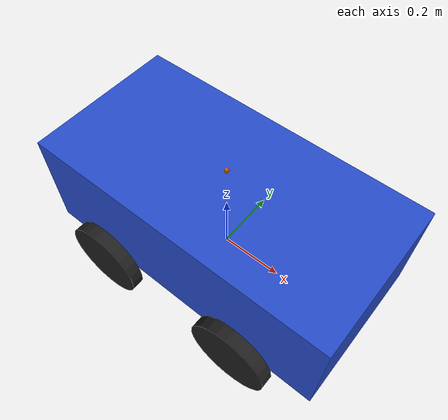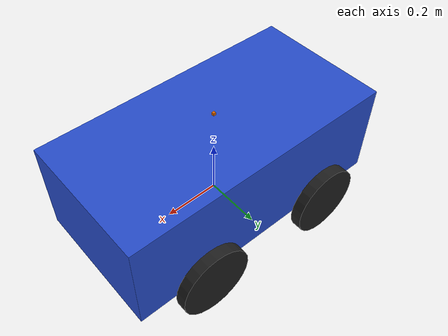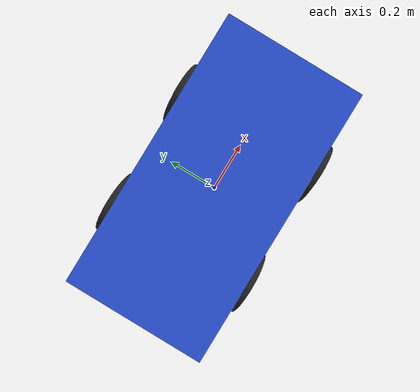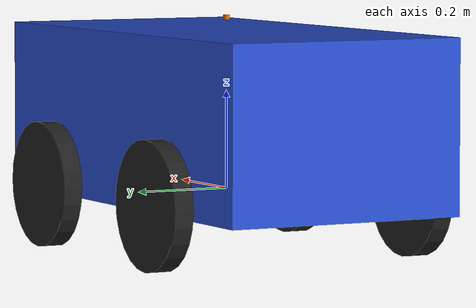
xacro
<?xml version='1.0'?>

<robot name="Rover" xmlns:xacro="http://www.ros.org/wiki/xacro">

  <xacro:include filename="$(find rover_description)/urdf/rover.gazebo" />
  <xacro:include filename="$(find rover_description)/urdf/materials.xacro"/>

  <link name='base_footprint'>
    <pose>0 0 0 0 0 0</pose>

    <inertial>
      <mass value="15.0"/>
      <origin xyz="0.0 0 0.1" rpy=" 0 0 0"/>
      <inertia
          ixx="1000"
          ixy="0"
          ixz="0"
          iyy="1000"
          iyz="0"
          izz="100"/>
    </inertial>

    <collision name='collision'>
      <origin xyz="0 0 0.15" rpy=" 0 0 0"/>
      <geometry>
        <box size= "1 0.5 0.35"/>
      </geometry>
    </collision>

    <visual name='base_footprint_visual'>
      <origin xyz="0 0 0.15" rpy=" 0 0 0"/>
      <geometry>

        <box size= "1 0.5 0.35"/>
      </geometry>
    </visual>
  </link>

  <link name="left_wheel_front">
    <collision name="collision">
      <origin xyz="0 0 0" rpy="0 1.5707 1.5707"/>
      <geometry>
        <cylinder radius="0.13" length="0.04"/>
      </geometry>
    </collision>

    <visual name="left_wheel_visual">
      <origin xyz="0 0 0" rpy="0 1.5707 1.5707"/>
      <geometry>
        <cylinder radius="0.13" length="0.04"/>
      </geometry>
    </visual>

    <inertial>
      <origin xyz="0 0 0" rpy="0 1.5707 1.5707"/>
      <mass value="5"/>
      <inertia
        ixx=".1" ixy="0.0" ixz="0.0"
        iyy=".1" iyz="0.0"
        izz=".1"/>
    </inertial>
  </link>

  <link name="right_wheel_front">
    <collision name="collision">
      <origin xyz="0 0 0" rpy="0 1.5707 1.5707"/>
      <geometry>
        <cylinder radius="0.13" length="0.04"/>
      </geometry>
    </collision>

    <visual name="right_wheel_visual">
      <origin xyz="0 0 0" rpy="0 1.5707 1.5707"/>
      <geometry>
        <cylinder radius="0.13" length="0.04"/>
      </geometry>
    </visual>

    <inertial>
      <origin xyz="0 0 0" rpy="0 1.5707 1.5707"/>
      <mass value="5"/>
      <inertia
        ixx=".1" ixy="0.0" ixz="0.0"
        iyy=".1" iyz="0.0"
        izz=".1"/>
    </inertial>
  </link>

  <link name="left_wheel_back">
    <collision name="collision">
      <origin xyz="0 0 0" rpy="0 1.5707 1.5707"/>
      <geometry>
        <cylinder radius="0.13" length="0.04"/>
      </geometry>
    </collision>

    <visual name="left_wheel_visual">
      <origin xyz="0 0 0" rpy="0 1.5707 1.5707"/>
      <geometry>
        <cylinder radius="0.13" length="0.04"/>
      </geometry>
    </visual>

    <inertial>
      <origin xyz="0 0 0" rpy="0 1.5707 1.5707"/>
      <mass value="5"/>
      <inertia
        ixx=".1" ixy="0.0" ixz="0.0"
        iyy=".1" iyz="0.0"
        izz=".1"/>
    </inertial>
  </link>

  <link name="right_wheel_back">
    <collision name="collision">
      <origin xyz="0 0 0" rpy="0 1.5707 1.5707"/>
      <geometry>
        <cylinder radius="0.13" length="0.04"/>
      </geometry>
    </collision>

    <visual name="right_wheel_visual">
      <origin xyz="0 0 0" rpy="0 1.5707 1.5707"/>
      <geometry>
        <cylinder radius="0.13" length="0.04"/>
      </geometry>
    </visual>

    <inertial>
      <origin xyz="0 0 0" rpy="0 1.5707 1.5707"/>
      <mass value="5"/>
      <inertia
        ixx=".1" ixy="0.0" ixz="0.0"
        iyy=".1" iyz="0.0"
        izz=".1"/>
    </inertial>
  </link>

  <joint type="continuous" name="left_wheel_front_hinge">
    <origin xyz="0.25 0.29 0" rpy="0 0 0"/>
    <child link="left_wheel_front"/>
    <parent link="base_footprint"/>
    <axis xyz="0 1 0" rpy="0 0 0"/>
    <limit effort="10000" velocity="1000"/>
    <joint_properties damping="1.0" friction="1.0"/>
  </joint>

  <joint type="continuous" name="right_wheel_front_hinge">
    <origin xyz="0.25 -0.29 0" rpy="0 0 0"/>
    <child link="right_wheel_front"/>
    <parent link="base_footprint"/>
    <axis xyz="0 1 0" rpy="0 0 0"/>
    <limit effort="10000" velocity="1000"/>
    <joint_properties damping="1.0" friction="1.0"/>
  </joint>

  <joint type="continuous" name="left_wheel_back_hinge">
    <origin xyz="-0.25 0.29 0" rpy="0 0 0"/>
    <child link="left_wheel_back"/>
    <parent link="base_footprint"/>
    <axis xyz="0 1 0" rpy="0 0 0"/>
    <limit effort="10000" velocity="1000"/>
    <joint_properties damping="1.0" friction="1.0"/>
  </joint>

  <joint type="continuous" name="right_wheel_back_hinge">
    <origin xyz="-0.25 -0.29 0" rpy="0 0 0"/>
    <child link="right_wheel_back"/>
    <parent link="base_footprint"/>
    <axis xyz="0 1 0" rpy="0 0 0"/>
    <limit effort="10000" velocity="1000"/>
    <joint_properties damping="1.0" friction="1.0"/>
  </joint>

  <joint name="sonar_front_joint" type="continuous">
      <axis xyz="0 0 1" />
      <origin rpy="0 0 0" xyz="0 0 0.35" />
      <parent link="base_footprint"/>
      <child link="base_sonar_front"/>
  </joint>

  <transmission name="sonar_trans" type="SimpleTransmission">
    <type>transmission_interface/SimpleTransmission</type>
    <actuator name="sonar_motor">
      <hardwareInterface>hardware_interface/EffortJointInterface</hardwareInterface>
    <mechanicalReduction>1</mechanicalReduction>
    </actuator>
    <joint name="sonar_front_joint">
      <hardwareInterface>hardware_interface/EffortJointInterface</hardwareInterface>
    </joint>
  </transmission>

  <link name="base_sonar_front">
      <collision>
        <origin xyz="0 0 0" rpy="0 0 0"/>
        <geometry>
          <box size="0.01 0.01 0.01"/>
        </geometry>
      </collision>
      <visual>
        <origin xyz="0 0 0" rpy="0 0 0"/>
        <geometry>
          <box size="0.01 0.01 0.01"/>
        </geometry>
      </visual>
      <inertial>
        <mass value="1e-5" />
        <origin xyz="0 0 0" rpy="0 0 0"/>
        <inertia ixx="10" ixy="0" ixz="0" iyy="10" iyz="0" izz="1" />
      </inertial>
  </link>

  <gazebo>
    <plugin name="gazebo_ros_control" filename="libgazebo_ros_control.so">
      <robotNamespace>/Rover</robotNamespace>
      <controlPeriod>0.01</controlPeriod>
    </plugin>
  </gazebo>

  <link name="dummy">
  </link>
  <joint name="dummy_joint" type="fixed">
    <parent link="dummy"/>
    <child link="base_footprint"/>
  </joint>
</robot>
